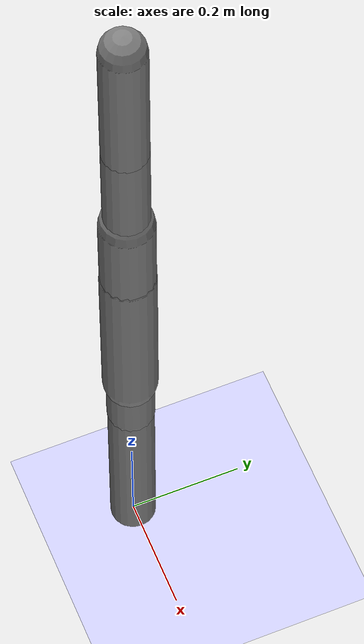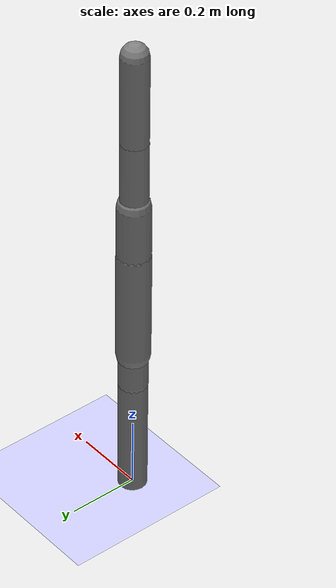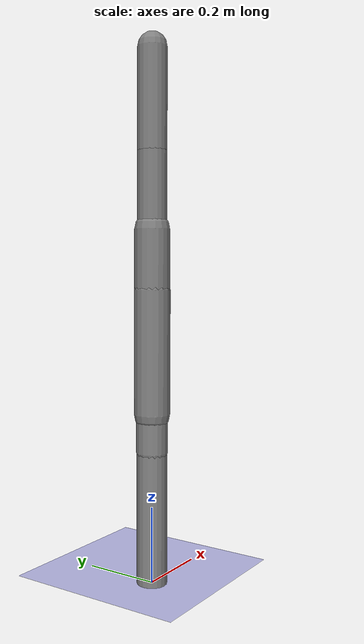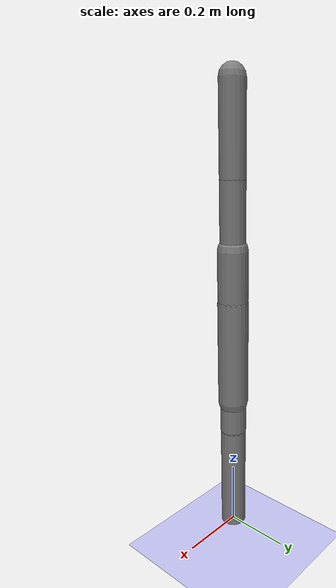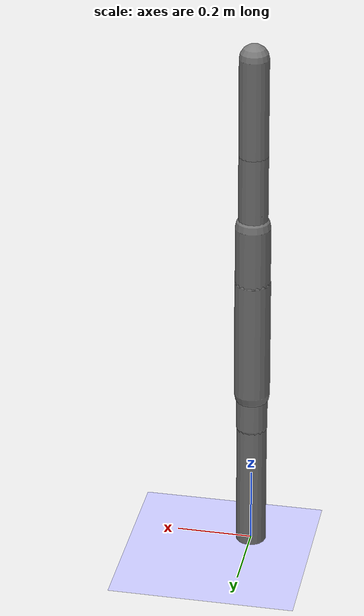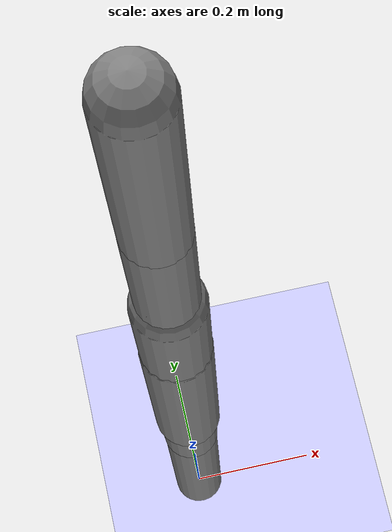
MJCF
<?xml version='1.0' encoding='UTF-8'?>
<mujoco model="robot_model">
  <worldbody>
    <light name="light" pos="0 -3 10" dir="0 0.5 -1" diffuse=".8 .8 .8" specular="0.1 0.1 0.1"/>
    <geom name="floor" type="plane" size="10.0 10.0 0.1" pos="0 0 0" rgba="0.8 0.8 1 1" contype="2" conaffinity="1"/>
    <body name="limb0" pos="0 0 0">
      <geom type="capsule" fromto="0 0 0 0 0 0.5869126291545108" size="0.04" density="505.387938972582" contype="1" conaffinity="2"/>
      <site type="sphere" size="0.01" name="limb0_site0" pos="0 0 0.30790353636936374"/>
      <freejoint name="limb0_root"/>
      <body name="limb1" pos="0 0 0.30790353636936374">
        <geom type="capsule" fromto="0 0 0 0 0 0.22374799158173964" size="0.029119176085318315" density="452.1334187822219" contype="1" conaffinity="2"/>
        <site type="sphere" size="0.01" name="limb1_site0" pos="0 0 0.13959699440114137"/>
        <site type="sphere" size="0.01" name="limb1_site1" pos="0 0 0.039350103148185524"/>
        <site type="sphere" size="0.01" name="limb1_site2" pos="0 0 0.19102740956826053"/>
        <body name="limb2" pos="0 0 0.13959699440114137">
          <geom type="capsule" fromto="0 0 0 0 0 0.32331157919001374" size="0.04703069767789839" density="709.8359320414992" contype="1" conaffinity="2"/>
          <joint name="joint_limb1_limb2_0" type="hinge" axis="0 1 0" range="-82.7424809592319 82.7424809592319" damping="5.0"/>
        </body>
        <body name="limb3" pos="0 0 0.039350103148185524">
          <geom type="capsule" fromto="0 0 0 0 0 0.31506302920139795" size="0.04118448157082622" density="1024.7729175917539" contype="1" conaffinity="2"/>
          <site type="sphere" size="0.01" name="limb3_site0" pos="0 0 0.31490592373299237"/>
          <body name="limb4" pos="0 0 0.31490592373299237">
            <geom type="capsule" fromto="0 0 0 0 0 0.4627724458843048" size="0.038315689202147445" density="598.8324428626668" contype="1" conaffinity="2"/>
            <joint name="joint_limb3_limb4_0" type="hinge" axis="0 1 0" range="-97.60316524447805 97.60316524447805" damping="5.0"/>
          </body>
          <joint name="joint_limb1_limb3_0" type="hinge" axis="1 0 0" range="-76.57739072162552 76.57739072162552" damping="5.0"/>
        </body>
        <body name="limb5" pos="0 0 0.19102740956826053">
          <geom type="capsule" fromto="0 0 0 0 0 0.4727806644286577" size="0.03794159670294999" density="1047.9904850783728" contype="1" conaffinity="2"/>
          <site type="sphere" size="0.01" name="limb5_site0" pos="0 0 0.2278818572451243"/>
          <site type="sphere" size="0.01" name="limb5_site1" pos="0 0 0.416773953600797"/>
          <site type="sphere" size="0.01" name="limb5_site2" pos="0 0 0.23831402153776318"/>
          <body name="limb6" pos="0 0 0.2278818572451243">
            <geom type="capsule" fromto="0 0 0 0 0 0.19942307054689806" size="0.04609395862756084" density="1147.4288306062897" contype="1" conaffinity="2"/>
            <joint name="joint_limb5_limb6_0" type="hinge" axis="0 0 1" range="-97.3556228309299 97.3556228309299" damping="5.0"/>
          </body>
          <body name="limb7" pos="0 0 0.416773953600797">
            <geom type="capsule" fromto="0 0 0 0 0 0.468181343672113" size="0.038154602031658345" density="1125.5913325396152" contype="1" conaffinity="2"/>
            <joint name="joint_limb5_limb7_0" type="hinge" axis="0 1 0" range="-118.69762092772474 118.69762092772474" damping="5.0"/>
          </body>
          <body name="limb8" pos="0 0 0.23831402153776318">
            <geom type="capsule" fromto="0 0 0 0 0 0.37166349185855707" size="0.03471472421033268" density="1181.8553192277445" contype="1" conaffinity="2"/>
            <joint name="joint_limb5_limb8_0" type="hinge" axis="0 0 1" range="-106.17964630106378 106.17964630106378" damping="5.0"/>
          </body>
          <joint name="joint_limb1_limb5_0" type="hinge" axis="0 1 0" range="-106.84257521657214 106.84257521657214" damping="5.0"/>
        </body>
        <joint name="joint_limb0_limb1_0" type="hinge" axis="0 1 0" range="-105.32012538048721 105.32012538048721" damping="5.0"/>
      </body>
    </body>
  </worldbody>
  <actuator>
    <position name="position_actuator_joint_limb0_limb1_0" joint="joint_limb0_limb1_0" gear="0.9772188059097339" inheritrange="1" kp="10.0"/>
    <position name="position_actuator_joint_limb1_limb2_0" joint="joint_limb1_limb2_0" gear="0.7360723872815542" inheritrange="1" kp="10.0"/>
    <position name="position_actuator_joint_limb1_limb3_0" joint="joint_limb1_limb3_0" gear="1.9786544527946286" inheritrange="1" kp="10.0"/>
    <position name="position_actuator_joint_limb3_limb4_0" joint="joint_limb3_limb4_0" gear="1.7459471619076385" inheritrange="1" kp="10.0"/>
    <position name="position_actuator_joint_limb1_limb5_0" joint="joint_limb1_limb5_0" gear="1.4252429185165156" inheritrange="1" kp="10.0"/>
    <position name="position_actuator_joint_limb5_limb6_0" joint="joint_limb5_limb6_0" gear="1.2514069354827302" inheritrange="1" kp="10.0"/>
    <position name="position_actuator_joint_limb5_limb7_0" joint="joint_limb5_limb7_0" gear="1.7310688920449273" inheritrange="1" kp="10.0"/>
    <position name="position_actuator_joint_limb5_limb8_0" joint="joint_limb5_limb8_0" gear="0.7597488265685853" inheritrange="1" kp="10.0"/>
  </actuator>
</mujoco>
